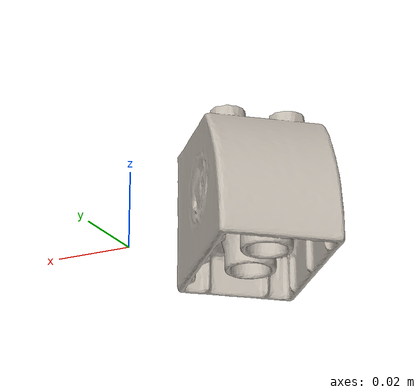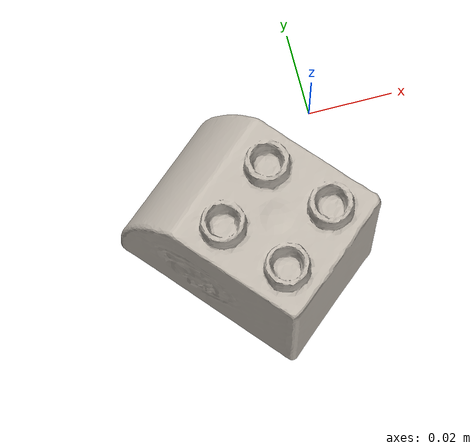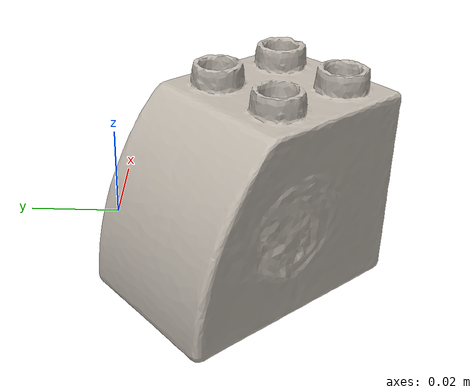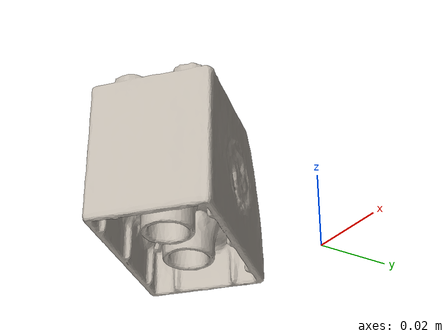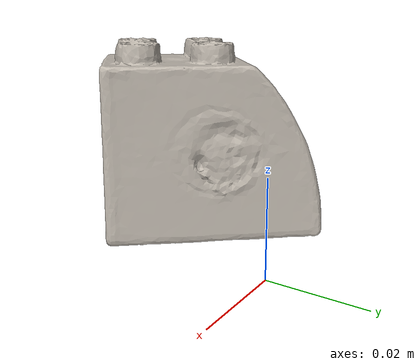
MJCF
<mujoco model="lego_d">
  <compiler angle="radian" meshdir="assets" texturedir="assets"/>
    <default>
        <default class="ycb_col">
            <geom contype="1" class="ycb_col" conaffinity="1" group="3" rgba=".4 .5 .6 1"/>
        </default>
        <default class="ycb_viz">
            <geom contype="0" class="ycb_col" conaffinity="0" type="mesh" mass="0"/>
        </default>
    </default>
  <asset>
    <texture type="2d" name="d_lego_duplo_tex" file="texture_map.png"/>
    <material name="d_lego_duplo_mat" texture="d_lego_duplo_tex" specular="0.5" shininess="0.5"/>
    <mesh file="textured.obj" name="d_lego_duplo"/>
    <mesh file="textured_collision_0.obj" name="d_lego_duplo_collision_0"/>
    <mesh file="textured_collision_1.obj" name="d_lego_duplo_collision_1"/>
    <mesh file="textured_collision_2.obj" name="d_lego_duplo_collision_2"/>
    <mesh file="textured_collision_3.obj" name="d_lego_duplo_collision_3"/>
    <mesh file="textured_collision_4.obj" name="d_lego_duplo_collision_4"/>
    <mesh file="textured_collision_5.obj" name="d_lego_duplo_collision_5"/>
    <mesh file="textured_collision_6.obj" name="d_lego_duplo_collision_6"/>
    <mesh file="textured_collision_7.obj" name="d_lego_duplo_collision_7"/>
    <mesh file="textured_collision_8.obj" name="d_lego_duplo_collision_8"/>
    <mesh file="textured_collision_9.obj" name="d_lego_duplo_collision_9"/>
    <mesh file="textured_collision_10.obj" name="d_lego_duplo_collision_10"/>
    <mesh file="textured_collision_11.obj" name="d_lego_duplo_collision_11"/>
    <mesh file="textured_collision_12.obj" name="d_lego_duplo_collision_12"/>
    <mesh file="textured_collision_13.obj" name="d_lego_duplo_collision_13"/>
    <mesh file="textured_collision_14.obj" name="d_lego_duplo_collision_14"/>
    <mesh file="textured_collision_15.obj" name="d_lego_duplo_collision_15"/>
    <mesh file="textured_collision_16.obj" name="d_lego_duplo_collision_16"/>
    <mesh file="textured_collision_17.obj" name="d_lego_duplo_collision_17"/>
    <mesh file="textured_collision_18.obj" name="d_lego_duplo_collision_18"/>
    <mesh file="textured_collision_19.obj" name="d_lego_duplo_collision_19"/>
    <mesh file="textured_collision_20.obj" name="d_lego_duplo_collision_20"/>
    <mesh file="textured_collision_21.obj" name="d_lego_duplo_collision_21"/>
    <mesh file="textured_collision_22.obj" name="d_lego_duplo_collision_22"/>
    <mesh file="textured_collision_23.obj" name="d_lego_duplo_collision_23"/>
    <mesh file="textured_collision_24.obj" name="d_lego_duplo_collision_24"/>
    <mesh file="textured_collision_25.obj" name="d_lego_duplo_collision_25"/>
    <mesh file="textured_collision_26.obj" name="d_lego_duplo_collision_26"/>
    <mesh file="textured_collision_27.obj" name="d_lego_duplo_collision_27"/>
    <mesh file="textured_collision_28.obj" name="d_lego_duplo_collision_28"/>
    <mesh file="textured_collision_29.obj" name="d_lego_duplo_collision_29"/>
    <mesh file="textured_collision_30.obj" name="d_lego_duplo_collision_30"/>
    <mesh file="textured_collision_31.obj" name="d_lego_duplo_collision_31"/>
    <mesh file="textured_collision_32.obj" name="d_lego_duplo_collision_32"/>
    <mesh file="textured_collision_33.obj" name="d_lego_duplo_collision_33"/>
    <mesh file="textured_collision_34.obj" name="d_lego_duplo_collision_34"/>
    <mesh file="textured_collision_35.obj" name="d_lego_duplo_collision_35"/>
    <mesh file="textured_collision_36.obj" name="d_lego_duplo_collision_36"/>
    <mesh file="textured_collision_37.obj" name="d_lego_duplo_collision_37"/>
    <mesh file="textured_collision_38.obj" name="d_lego_duplo_collision_38"/>
    <mesh file="textured_collision_39.obj" name="d_lego_duplo_collision_39"/>
    <mesh file="textured_collision_40.obj" name="d_lego_duplo_collision_40"/>
    <mesh file="textured_collision_41.obj" name="d_lego_duplo_collision_41"/>
  </asset>
  <worldbody>
      <geom material="d_lego_duplo_mat" mesh="d_lego_duplo" class="ycb_viz"/>
      <geom mesh="d_lego_duplo_collision_0" class="ycb_col" conaffinity="1" condim="4" friction="0.1 0.1 0.1" mass="0.00037789179250923916" rgba="1 1 1 1" solimp="0.99 0.99 0.01" solref=".001 0.1" type="mesh" group="3"/>
      <geom mesh="d_lego_duplo_collision_1" class="ycb_col" conaffinity="1" condim="4" friction="0.1 0.1 0.1" mass="0.00029849623796985827" rgba="1 1 1 1" solimp="0.99 0.99 0.01" solref=".001 0.1" type="mesh" group="3"/>
      <geom mesh="d_lego_duplo_collision_2" class="ycb_col" conaffinity="1" condim="4" friction="0.1 0.1 0.1" mass="0.00019993106595398382" rgba="1 1 1 1" solimp="0.99 0.99 0.01" solref=".001 0.1" type="mesh" group="3"/>
      <geom mesh="d_lego_duplo_collision_3" class="ycb_col" conaffinity="1" condim="4" friction="0.1 0.1 0.1" mass="0.00040669732635078876" rgba="1 1 1 1" solimp="0.99 0.99 0.01" solref=".001 0.1" type="mesh" group="3"/>
      <geom mesh="d_lego_duplo_collision_4" class="ycb_col" conaffinity="1" condim="4" friction="0.1 0.1 0.1" mass="0.0003059690166397652" rgba="1 1 1 1" solimp="0.99 0.99 0.01" solref=".001 0.1" type="mesh" group="3"/>
      <geom mesh="d_lego_duplo_collision_5" class="ycb_col" conaffinity="1" condim="4" friction="0.1 0.1 0.1" mass="0.0003076543457155097" rgba="1 1 1 1" solimp="0.99 0.99 0.01" solref=".001 0.1" type="mesh" group="3"/>
      <geom mesh="d_lego_duplo_collision_6" class="ycb_col" conaffinity="1" condim="4" friction="0.1 0.1 0.1" mass="0.00035243834499568323" rgba="1 1 1 1" solimp="0.99 0.99 0.01" solref=".001 0.1" type="mesh" group="3"/>
      <geom mesh="d_lego_duplo_collision_7" class="ycb_col" conaffinity="1" condim="4" friction="0.1 0.1 0.1" mass="3.2337856516583975e-05" rgba="1 1 1 1" solimp="0.99 0.99 0.01" solref=".001 0.1" type="mesh" group="3"/>
      <geom mesh="d_lego_duplo_collision_8" class="ycb_col" conaffinity="1" condim="4" friction="0.1 0.1 0.1" mass="9.038884523355184e-05" rgba="1 1 1 1" solimp="0.99 0.99 0.01" solref=".001 0.1" type="mesh" group="3"/>
      <geom mesh="d_lego_duplo_collision_9" class="ycb_col" conaffinity="1" condim="4" friction="0.1 0.1 0.1" mass="0.00043167848158589926" rgba="1 1 1 1" solimp="0.99 0.99 0.01" solref=".001 0.1" type="mesh" group="3"/>
      <geom mesh="d_lego_duplo_collision_10" class="ycb_col" conaffinity="1" condim="4" friction="0.1 0.1 0.1" mass="0.00019107882858542742" rgba="1 1 1 1" solimp="0.99 0.99 0.01" solref=".001 0.1" type="mesh" group="3"/>
      <geom mesh="d_lego_duplo_collision_11" class="ycb_col" conaffinity="1" condim="4" friction="0.1 0.1 0.1" mass="0.00013049205729507177" rgba="1 1 1 1" solimp="0.99 0.99 0.01" solref=".001 0.1" type="mesh" group="3"/>
      <geom mesh="d_lego_duplo_collision_12" class="ycb_col" conaffinity="1" condim="4" friction="0.1 0.1 0.1" mass="0.0006340759320379879" rgba="1 1 1 1" solimp="0.99 0.99 0.01" solref=".001 0.1" type="mesh" group="3"/>
      <geom mesh="d_lego_duplo_collision_13" class="ycb_col" conaffinity="1" condim="4" friction="0.1 0.1 0.1" mass="0.00040309967038988957" rgba="1 1 1 1" solimp="0.99 0.99 0.01" solref=".001 0.1" type="mesh" group="3"/>
      <geom mesh="d_lego_duplo_collision_14" class="ycb_col" conaffinity="1" condim="4" friction="0.1 0.1 0.1" mass="6.660149851908044e-05" rgba="1 1 1 1" solimp="0.99 0.99 0.01" solref=".001 0.1" type="mesh" group="3"/>
      <geom mesh="d_lego_duplo_collision_15" class="ycb_col" conaffinity="1" condim="4" friction="0.1 0.1 0.1" mass="0.0003698634391632748" rgba="1 1 1 1" solimp="0.99 0.99 0.01" solref=".001 0.1" type="mesh" group="3"/>
      <geom mesh="d_lego_duplo_collision_16" class="ycb_col" conaffinity="1" condim="4" friction="0.1 0.1 0.1" mass="0.00014678355617340566" rgba="1 1 1 1" solimp="0.99 0.99 0.01" solref=".001 0.1" type="mesh" group="3"/>
      <geom mesh="d_lego_duplo_collision_17" class="ycb_col" conaffinity="1" condim="4" friction="0.1 0.1 0.1" mass="0.00019479581794559536" rgba="1 1 1 1" solimp="0.99 0.99 0.01" solref=".001 0.1" type="mesh" group="3"/>
      <geom mesh="d_lego_duplo_collision_18" class="ycb_col" conaffinity="1" condim="4" friction="0.1 0.1 0.1" mass="6.357263664540838e-06" rgba="1 1 1 1" solimp="0.99 0.99 0.01" solref=".001 0.1" type="mesh" group="3"/>
      <geom mesh="d_lego_duplo_collision_19" class="ycb_col" conaffinity="1" condim="4" friction="0.1 0.1 0.1" mass="5.8146385075907774e-05" rgba="1 1 1 1" solimp="0.99 0.99 0.01" solref=".001 0.1" type="mesh" group="3"/>
      <geom mesh="d_lego_duplo_collision_20" class="ycb_col" conaffinity="1" condim="4" friction="0.1 0.1 0.1" mass="1.7702077993845107e-05" rgba="1 1 1 1" solimp="0.99 0.99 0.01" solref=".001 0.1" type="mesh" group="3"/>
      <geom mesh="d_lego_duplo_collision_21" class="ycb_col" conaffinity="1" condim="4" friction="0.1 0.1 0.1" mass="6.417247597714228e-05" rgba="1 1 1 1" solimp="0.99 0.99 0.01" solref=".001 0.1" type="mesh" group="3"/>
      <geom mesh="d_lego_duplo_collision_22" class="ycb_col" conaffinity="1" condim="4" friction="0.1 0.1 0.1" mass="4.0257043401322844e-05" rgba="1 1 1 1" solimp="0.99 0.99 0.01" solref=".001 0.1" type="mesh" group="3"/>
      <geom mesh="d_lego_duplo_collision_23" class="ycb_col" conaffinity="1" condim="4" friction="0.1 0.1 0.1" mass="4.6865120779432435e-05" rgba="1 1 1 1" solimp="0.99 0.99 0.01" solref=".001 0.1" type="mesh" group="3"/>
      <geom mesh="d_lego_duplo_collision_24" class="ycb_col" conaffinity="1" condim="4" friction="0.1 0.1 0.1" mass="1.7158951273986565e-05" rgba="1 1 1 1" solimp="0.99 0.99 0.01" solref=".001 0.1" type="mesh" group="3"/>
      <geom mesh="d_lego_duplo_collision_25" class="ycb_col" conaffinity="1" condim="4" friction="0.1 0.1 0.1" mass="1.0539315760576764e-05" rgba="1 1 1 1" solimp="0.99 0.99 0.01" solref=".001 0.1" type="mesh" group="3"/>
      <geom mesh="d_lego_duplo_collision_26" class="ycb_col" conaffinity="1" condim="4" friction="0.1 0.1 0.1" mass="1.3492450324116463e-05" rgba="1 1 1 1" solimp="0.99 0.99 0.01" solref=".001 0.1" type="mesh" group="3"/>
      <geom mesh="d_lego_duplo_collision_27" class="ycb_col" conaffinity="1" condim="4" friction="0.1 0.1 0.1" mass="1.9761054760073652e-05" rgba="1 1 1 1" solimp="0.99 0.99 0.01" solref=".001 0.1" type="mesh" group="3"/>
      <geom mesh="d_lego_duplo_collision_28" class="ycb_col" conaffinity="1" condim="4" friction="0.1 0.1 0.1" mass="1.5110034798252085e-05" rgba="1 1 1 1" solimp="0.99 0.99 0.01" solref=".001 0.1" type="mesh" group="3"/>
      <geom mesh="d_lego_duplo_collision_29" class="ycb_col" conaffinity="1" condim="4" friction="0.1 0.1 0.1" mass="1.1533280132403552e-05" rgba="1 1 1 1" solimp="0.99 0.99 0.01" solref=".001 0.1" type="mesh" group="3"/>
      <geom mesh="d_lego_duplo_collision_30" class="ycb_col" conaffinity="1" condim="4" friction="0.1 0.1 0.1" mass="0.0005406408499610432" rgba="1 1 1 1" solimp="0.99 0.99 0.01" solref=".001 0.1" type="mesh" group="3"/>
      <geom mesh="d_lego_duplo_collision_31" class="ycb_col" conaffinity="1" condim="4" friction="0.1 0.1 0.1" mass="7.038123137055705e-05" rgba="1 1 1 1" solimp="0.99 0.99 0.01" solref=".001 0.1" type="mesh" group="3"/>
      <geom mesh="d_lego_duplo_collision_32" class="ycb_col" conaffinity="1" condim="4" friction="0.1 0.1 0.1" mass="0.0001308064494848667" rgba="1 1 1 1" solimp="0.99 0.99 0.01" solref=".001 0.1" type="mesh" group="3"/>
      <geom mesh="d_lego_duplo_collision_33" class="ycb_col" conaffinity="1" condim="4" friction="0.1 0.1 0.1" mass="0.00016466069847318485" rgba="1 1 1 1" solimp="0.99 0.99 0.01" solref=".001 0.1" type="mesh" group="3"/>
      <geom mesh="d_lego_duplo_collision_34" class="ycb_col" conaffinity="1" condim="4" friction="0.1 0.1 0.1" mass="0.0001683520256111118" rgba="1 1 1 1" solimp="0.99 0.99 0.01" solref=".001 0.1" type="mesh" group="3"/>
      <geom mesh="d_lego_duplo_collision_35" class="ycb_col" conaffinity="1" condim="4" friction="0.1 0.1 0.1" mass="0.00017510888748962624" rgba="1 1 1 1" solimp="0.99 0.99 0.01" solref=".001 0.1" type="mesh" group="3"/>
      <geom mesh="d_lego_duplo_collision_36" class="ycb_col" conaffinity="1" condim="4" friction="0.1 0.1 0.1" mass="3.317140479423738e-05" rgba="1 1 1 1" solimp="0.99 0.99 0.01" solref=".001 0.1" type="mesh" group="3"/>
      <geom mesh="d_lego_duplo_collision_37" class="ycb_col" conaffinity="1" condim="4" friction="0.1 0.1 0.1" mass="2.403638155546736e-05" rgba="1 1 1 1" solimp="0.99 0.99 0.01" solref=".001 0.1" type="mesh" group="3"/>
      <geom mesh="d_lego_duplo_collision_38" class="ycb_col" conaffinity="1" condim="4" friction="0.1 0.1 0.1" mass="1.53705853248027e-05" rgba="1 1 1 1" solimp="0.99 0.99 0.01" solref=".001 0.1" type="mesh" group="3"/>
      <geom mesh="d_lego_duplo_collision_39" class="ycb_col" conaffinity="1" condim="4" friction="0.1 0.1 0.1" mass="1.1581630432578601e-05" rgba="1 1 1 1" solimp="0.99 0.99 0.01" solref=".001 0.1" type="mesh" group="3"/>
      <geom mesh="d_lego_duplo_collision_40" class="ycb_col" conaffinity="1" condim="4" friction="0.1 0.1 0.1" mass="2.3480768581816814e-05" rgba="1 1 1 1" solimp="0.99 0.99 0.01" solref=".001 0.1" type="mesh" group="3"/>
      <geom mesh="d_lego_duplo_collision_41" class="ycb_col" conaffinity="1" condim="4" friction="0.1 0.1 0.1" mass="1.1039519398510742e-05" rgba="1 1 1 1" solimp="0.99 0.99 0.01" solref=".001 0.1" type="mesh" group="3"/>
  </worldbody>
</mujoco>
